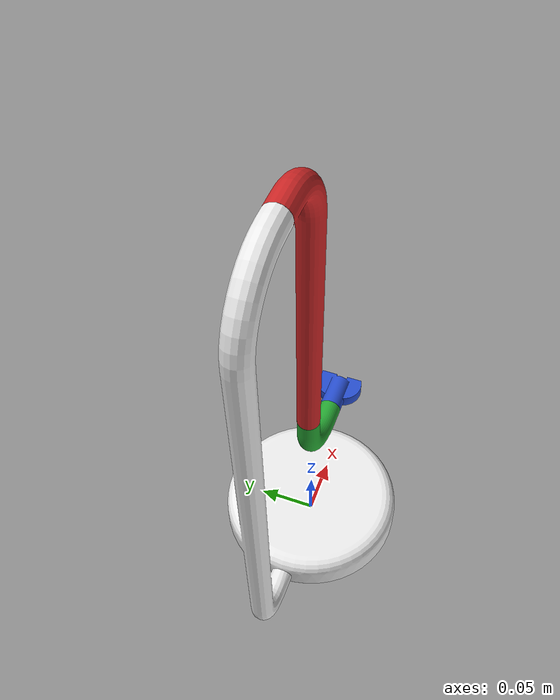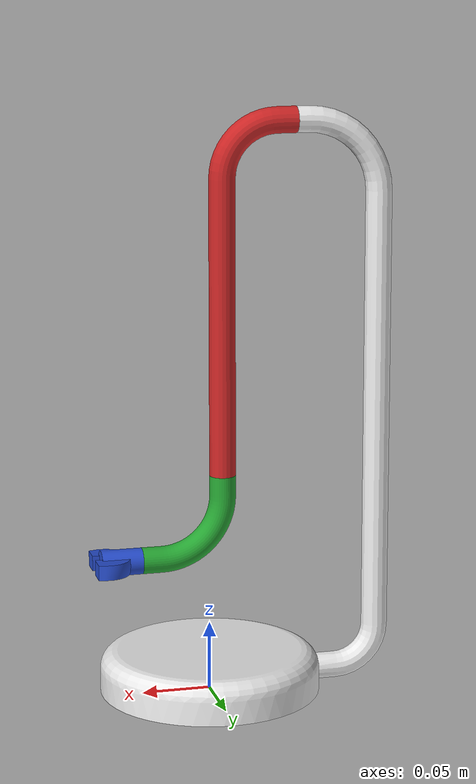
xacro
<?xml version="1.0" ?>
<robot name="ThreeDoFArm" xmlns:xacro="http://www.ros.org/wiki/xacro">

<xacro:include filename="$(find ThreeDoFArm_description)/urdf/materials.xacro" />
<xacro:include filename="$(find ThreeDoFArm_description)/urdf/ros2_control.xacro" />
<xacro:include filename="$(find ThreeDoFArm_description)/urdf/ThreeDoFArm.trans" />
<xacro:include filename="$(find ThreeDoFArm_description)/urdf/ThreeDoFArm.gazebo" />

<link name = "world"></link>

<joint name="world_joint" type="fixed">
  <origin xyz="0.0 0.0 0.0" rpy="0 0 0"/>
  <parent link="world"/>
  <child link="base_link"/>
  <axis xyz="0.0 0.0 0.0"/>
</joint>

<link name="base_link">
  <inertial>
    <origin xyz="-0.02218644426338725 -2.877088731489105e-08 0.05226133617249149" rpy="0 0 0"/>
    <mass value="5.668864967651046"/>
    <inertia ixx="0.061065" iyy="0.073372" izz="0.026744" ixy="-0.0" iyz="-0.0" ixz="0.020113"/>
  </inertial>
  <visual>
    <origin xyz="0 0 0" rpy="0 0 0"/>
    <geometry>
      <mesh filename="file://$(find ThreeDoFArm_description)/meshes/base_link.stl" scale="0.001 0.001 0.001"/>
    </geometry>
  </visual>
  <collision>
    <origin xyz="0 0 0" rpy="0 0 0"/>
    <geometry>
      <mesh filename="file://$(find ThreeDoFArm_description)/meshes/base_link.stl" scale="0.001 0.001 0.001"/>
    </geometry>
  </collision>
</link>

<link name="link1_1">
  <inertial>
    <origin xyz="0.048443161868147 -1.7192424228639024e-18 -0.11183410870726407" rpy="0 0 0"/>
    <mass value="0.6488625922137717"/>
    <inertia ixx="0.004206" iyy="0.004303" izz="0.000126" ixy="-0.0" iyz="0.0" ixz="0.000372"/>
  </inertial>
  <visual>
    <origin xyz="0.063737 -0.0 -0.415947" rpy="0 0 0"/>
    <geometry>
      <mesh filename="file://$(find ThreeDoFArm_description)/meshes/link1_1.stl" scale="0.001 0.001 0.001"/>
    </geometry>
  </visual>
  <collision>
    <origin xyz="0.063737 -0.0 -0.415947" rpy="0 0 0"/>
    <geometry>
      <mesh filename="file://$(find ThreeDoFArm_description)/meshes/link1_1.stl" scale="0.001 0.001 0.001"/>
    </geometry>
  </collision>
</link>

<link name="link2_1">
  <inertial>
    <origin xyz="0.019077234301298908 0.0 -0.04092280902331237" rpy="0 0 0"/>
    <mass value="0.22409652124046817"/>
    <inertia ixx="9e-05" iyy="0.00017" izz="9e-05" ixy="0.0" iyz="0.0" ixz="6.8e-05"/>
  </inertial>
  <visual>
    <origin xyz="0.010037 -0.0 -0.160947" rpy="0 0 0"/>
    <geometry>
      <mesh filename="file://$(find ThreeDoFArm_description)/meshes/link2_1.stl" scale="0.001 0.001 0.001"/>
    </geometry>
  </visual>
  <collision>
    <origin xyz="0.010037 -0.0 -0.160947" rpy="0 0 0"/>
    <geometry>
      <mesh filename="file://$(find ThreeDoFArm_description)/meshes/link2_1.stl" scale="0.001 0.001 0.001"/>
    </geometry>
  </collision>
</link>

<link name="link3_1">
  <inertial>
    <origin xyz="0.018860664798537936 -2.20499288411448e-08 -0.0004227178798861392" rpy="0 0 0"/>
    <mass value="0.11034176146118516"/>
    <inertia ixx="1.2e-05" iyy="1.1e-05" izz="1.9e-05" ixy="0.0" iyz="-0.0" ixz="0.0"/>
  </inertial>
  <visual>
    <origin xyz="-0.049963 -0.0 -0.100947" rpy="0 0 0"/>
    <geometry>
      <mesh filename="file://$(find ThreeDoFArm_description)/meshes/link3_1.stl" scale="0.001 0.001 0.001"/>
    </geometry>
  </visual>
  <collision>
    <origin xyz="-0.049963 -0.0 -0.100947" rpy="0 0 0"/>
    <geometry>
      <mesh filename="file://$(find ThreeDoFArm_description)/meshes/link3_1.stl" scale="0.001 0.001 0.001"/>
    </geometry>
  </collision>
</link>

<joint name="joint_1" type="continuous">
  <origin xyz="-0.063737 0.0 0.415947" rpy="0 0 0"/>
  <parent link="base_link"/>
  <child link="link1_1"/>
  <axis xyz="1.0 0.0 0.0"/>
</joint>

<joint name="joint_2" type="continuous">
  <origin xyz="0.0537 0.0 -0.255" rpy="0 0 0"/>
  <parent link="link1_1"/>
  <child link="link2_1"/>
  <axis xyz="-0.0 0.0 -1.0"/>
</joint>

<joint name="joint_3" type="continuous">
  <origin xyz="0.06 0.0 -0.06" rpy="0 0 0"/>
  <parent link="link2_1"/>
  <child link="link3_1"/>
  <axis xyz="1.0 0.0 0.0"/>
</joint>

</robot>

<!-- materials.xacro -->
<robot name="ThreeDoFArm" xmlns:xacro="http://www.ros.org/wiki/xacro" >

<material name="silver">
  <color rgba="0.700 0.700 0.700 1.000"/>
</material>

</robot>

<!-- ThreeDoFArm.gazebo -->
<robot name="ThreeDoFArm" xmlns:xacro="http://www.ros.org/wiki/xacro" >

<xacro:property name="red" value="Gazebo/Red" />
<xacro:property name="white" value="Gazebo/White" />
<xacro:property name="blue" value="Gazebo/Blue" />
<xacro:property name="green" value="Gazebo/Green" />

<gazebo reference="base_link">
  <material>${white}</material>
  <mu1>0.2</mu1>
  <mu2>0.2</mu2>
  <self_collide>true</self_collide>
  <gravity>true</gravity>
</gazebo>

<gazebo reference="link1_1">
  <material>${red}</material>
  <mu1>0.2</mu1>
  <mu2>0.2</mu2>
  <self_collide>true</self_collide>
</gazebo>

<gazebo reference="link2_1">
  <material>${green}</material>
  <mu1>0.2</mu1>
  <mu2>0.2</mu2>
  <self_collide>true</self_collide>
</gazebo>

<gazebo reference="link3_1">
  <material>${blue}</material>
  <mu1>0.2</mu1>
  <mu2>0.2</mu2>
  <self_collide>true</self_collide>
</gazebo>

</robot>
